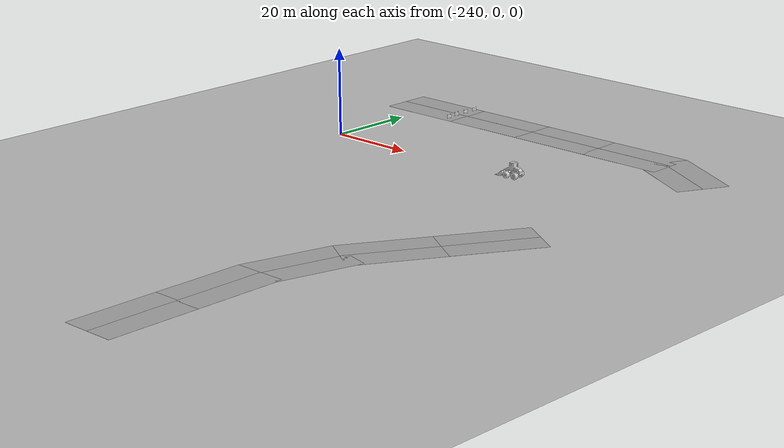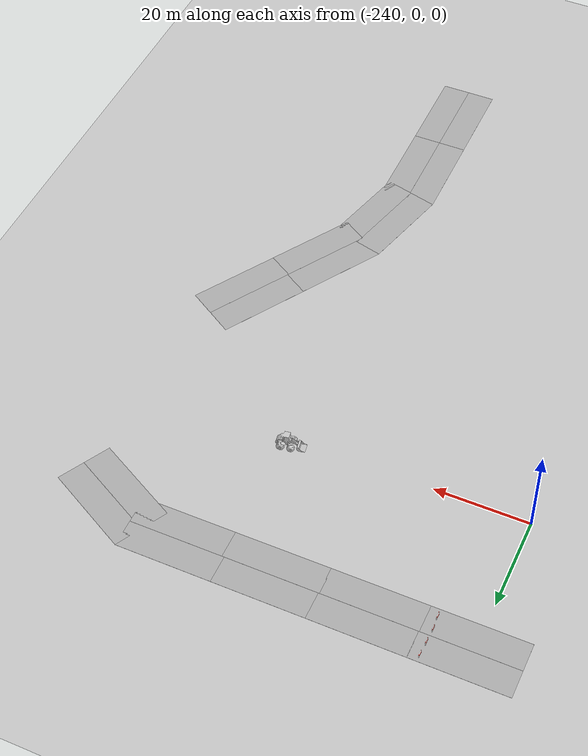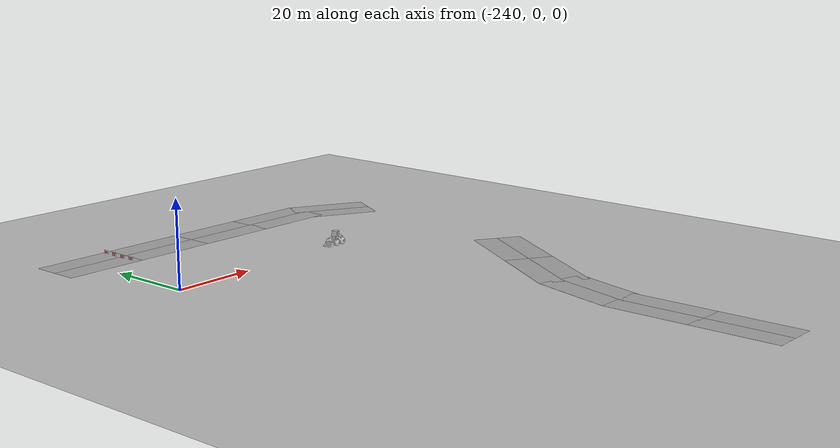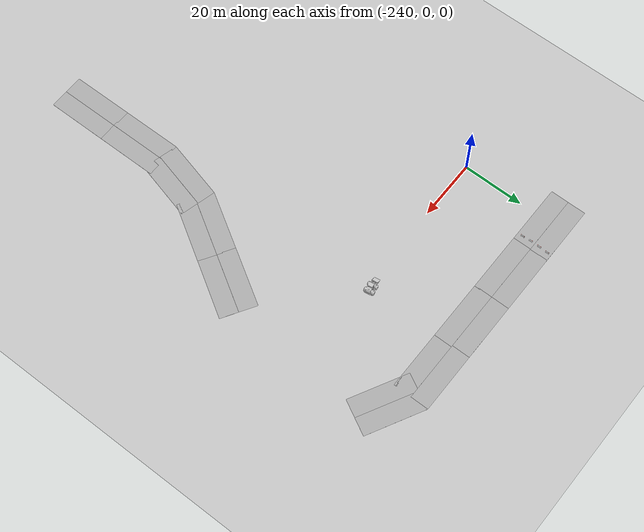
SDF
<sdf version="1.6">
 <world name="default">
  <model name="ground_plane">
   <static>1</static>
   <link name="link">
    <collision name="collision">
     <geometry><plane><normal>0 0 1</normal><size>500 500</size></plane></geometry>
     <surface><friction><ode><mu>100</mu><mu2>50</mu2></ode></friction></surface>
    </collision>
    <visual name="visual">
     <cast_shadows>0</cast_shadows>
     <geometry><plane><normal>0 0 1</normal><size>500 500</size></plane></geometry>
     <material>
      <script><uri>file://media/materials/scripts/gazebo.material</uri><name>Gazebo/Grey</name></script>
     </material>
    </visual>
   </link>
  </model>
  <model name="double_straight_road">
   <model name="straight_road">
    <link name="link">
     <inertial>
      <mass>1</mass>
      <inertia>
       <ixx>0.166667</ixx>
       <ixy>0</ixy>
       <ixz>0</ixz>
       <iyy>0.166667</iyy>
       <iyz>0</iyz>
       <izz>0.166667</izz>
      </inertia>
     </inertial>
     <visual name="visual">
      <geometry><box><size>20 6 0.02</size></box></geometry>
      <material>
       <script>
        <name>simple_road/Diffuse</name>
        <uri>model://double_straight_road/materials/scripts</uri>
        <uri>model://double_straight_road/materials/textures</uri>
       </script>
       <shader type="vertex"><normal_map>__default__</normal_map></shader>
       <ambient>0.3 0.3 0.3 1</ambient>
       <diffuse>0.7 0.7 0.7 1</diffuse>
       <specular>0.01 0.01 0.01 1</specular>
       <emissive>0 0 0 1</emissive>
      </material>
      <pose>0 0 0.01 0 -0 0</pose>
     </visual>
     <collision name="collision">
      <pose>0 0 0.01 0 -0 0</pose>
      <geometry><box><size>20 6 0.02</size></box></geometry>
      <surface>
       <friction>
        <ode><mu>1</mu><mu2>1</mu2><fdir1>0 0 0</fdir1><slip1>0</slip1><slip2>0</slip2></ode>
        <torsional>
         <coefficient>1</coefficient>
         <patch_radius>0</patch_radius>
         <surface_radius>0</surface_radius>
         <use_patch_radius>1</use_patch_radius>
         <ode><slip>0</slip></ode>
        </torsional>
       </friction>
       <bounce><restitution_coefficient>0</restitution_coefficient><threshold>1e+06</threshold></bounce>
       <contact>
        <collide_without_contact>0</collide_without_contact>
        <collide_without_contact_bitmask>1</collide_without_contact_bitmask>
        <collide_bitmask>1</collide_bitmask>
        <ode>
         <soft_cfm>0</soft_cfm>
         <soft_erp>0.2</soft_erp>
         <kp>1e+13</kp>
         <kd>1</kd>
         <max_vel>0.01</max_vel>
         <min_depth>0</min_depth>
        </ode>
        <bullet>
         <split_impulse>1</split_impulse>
         <split_impulse_penetration_threshold>-0.01</split_impulse_penetration_threshold>
         <soft_cfm>0</soft_cfm>
         <soft_erp>0.2</soft_erp>
         <kp>1e+13</kp>
         <kd>1</kd>
        </bullet>
       </contact>
      </surface>
     </collision>
    </link>
    <static>1</static>
    <pose>0 -3.0009 0 0 -0 0</pose>
   </model>
   <model name="straight_road_0">
    <link name="link">
     <inertial>
      <mass>1</mass>
      <inertia>
       <ixx>0.166667</ixx>
       <ixy>0</ixy>
       <ixz>0</ixz>
       <iyy>0.166667</iyy>
       <iyz>0</iyz>
       <izz>0.166667</izz>
      </inertia>
     </inertial>
     <visual name="visual">
      <geometry><box><size>20 6 0.02</size></box></geometry>
      <material>
       <script>
        <name>simple_road/Diffuse</name>
        <uri>model://double_straight_road/materials/scripts</uri>
        <uri>model://double_straight_road/materials/textures</uri>
       </script>
       <shader type="vertex"><normal_map>__default__</normal_map></shader>
       <ambient>0.3 0.3 0.3 1</ambient>
       <diffuse>0.7 0.7 0.7 1</diffuse>
       <specular>0.01 0.01 0.01 1</specular>
       <emissive>0 0 0 1</emissive>
      </material>
      <pose>0 0 0.01 0 -0 0</pose>
     </visual>
     <collision name="collision">
      <pose>0 0 0.01 0 -0 0</pose>
      <geometry><box><size>20 6 0.02</size></box></geometry>
      <surface>
       <friction>
        <ode><mu>1</mu><mu2>1</mu2><fdir1>0 0 0</fdir1><slip1>0</slip1><slip2>0</slip2></ode>
        <torsional>
         <coefficient>1</coefficient>
         <patch_radius>0</patch_radius>
         <surface_radius>0</surface_radius>
         <use_patch_radius>1</use_patch_radius>
         <ode><slip>0</slip></ode>
        </torsional>
       </friction>
       <bounce><restitution_coefficient>0</restitution_coefficient><threshold>1e+06</threshold></bounce>
       <contact>
        <collide_without_contact>0</collide_without_contact>
        <collide_without_contact_bitmask>1</collide_without_contact_bitmask>
        <collide_bitmask>1</collide_bitmask>
        <ode>
         <soft_cfm>0</soft_cfm>
         <soft_erp>0.2</soft_erp>
         <kp>1e+13</kp>
         <kd>1</kd>
         <max_vel>0.01</max_vel>
         <min_depth>0</min_depth>
        </ode>
        <bullet>
         <split_impulse>1</split_impulse>
         <split_impulse_penetration_threshold>-0.01</split_impulse_penetration_threshold>
         <soft_cfm>0</soft_cfm>
         <soft_erp>0.2</soft_erp>
         <kp>1e+13</kp>
         <kd>1</kd>
        </bullet>
       </contact>
      </surface>
     </collision>
    </link>
    <static>1</static>
    <pose>0 3.0009 0 0 -0 0</pose>
   </model>
   <static>1</static>
   <pose>-239.242 31.0572 0 0 -0 0</pose>
  </model>
  <model name="double_raw_road">
   <model name="raw_road">
    <link name="link">
     <inertial>
      <mass>1</mass>
      <inertia>
       <ixx>0.166667</ixx>
       <ixy>0</ixy>
       <ixz>0</ixz>
       <iyy>0.166667</iyy>
       <iyz>0</iyz>
       <izz>0.166667</izz>
      </inertia>
     </inertial>
     <visual name="visual">
      <geometry><box><size>20 6 0.02</size></box></geometry>
      <material>
       <script>
        <name>asphalt/Diffuse</name>
        <uri>model://raw_road/materials/scripts</uri>
        <uri>model://raw_road/materials/textures</uri>
       </script>
       <shader type="vertex"><normal_map>__default__</normal_map></shader>
       <ambient>0.3 0.3 0.3 1</ambient>
       <diffuse>0.7 0.7 0.7 1</diffuse>
       <specular>0.01 0.01 0.01 1</specular>
       <emissive>0 0 0 1</emissive>
      </material>
      <pose>0 0 0.01 0 -0 0</pose>
     </visual>
     <collision name="collision">
      <pose>0 0 0.01 0 -0 0</pose>
      <geometry><box><size>20 6 0.02</size></box></geometry>
      <surface>
       <friction>
        <ode><mu>1</mu><mu2>1</mu2><fdir1>0 0 0</fdir1><slip1>0</slip1><slip2>0</slip2></ode>
        <torsional>
         <coefficient>1</coefficient>
         <patch_radius>0</patch_radius>
         <surface_radius>0</surface_radius>
         <use_patch_radius>1</use_patch_radius>
         <ode><slip>0</slip></ode>
        </torsional>
       </friction>
       <bounce><restitution_coefficient>0</restitution_coefficient><threshold>1e+06</threshold></bounce>
       <contact>
        <collide_without_contact>0</collide_without_contact>
        <collide_without_contact_bitmask>1</collide_without_contact_bitmask>
        <collide_bitmask>1</collide_bitmask>
        <ode>
         <soft_cfm>0</soft_cfm>
         <soft_erp>0.2</soft_erp>
         <kp>1e+13</kp>
         <kd>1</kd>
         <max_vel>0.01</max_vel>
         <min_depth>0</min_depth>
        </ode>
        <bullet>
         <split_impulse>1</split_impulse>
         <split_impulse_penetration_threshold>-0.01</split_impulse_penetration_threshold>
         <soft_cfm>0</soft_cfm>
         <soft_erp>0.2</soft_erp>
         <kp>1e+13</kp>
         <kd>1</kd>
        </bullet>
       </contact>
      </surface>
     </collision>
    </link>
    <static>1</static>
    <pose>0 -3.0009 0 0 -0 0</pose>
   </model>
   <model name="raw_road_0">
    <link name="link">
     <inertial>
      <mass>1</mass>
      <inertia>
       <ixx>0.166667</ixx>
       <ixy>0</ixy>
       <ixz>0</ixz>
       <iyy>0.166667</iyy>
       <iyz>0</iyz>
       <izz>0.166667</izz>
      </inertia>
     </inertial>
     <visual name="visual">
      <geometry><box><size>20 6 0.02</size></box></geometry>
      <material>
       <script>
        <name>asphalt/Diffuse</name>
        <uri>model://raw_road/materials/scripts</uri>
        <uri>model://raw_road/materials/textures</uri>
       </script>
       <shader type="vertex"><normal_map>__default__</normal_map></shader>
       <ambient>0.3 0.3 0.3 1</ambient>
       <diffuse>0.7 0.7 0.7 1</diffuse>
       <specular>0.01 0.01 0.01 1</specular>
       <emissive>0 0 0 1</emissive>
      </material>
      <pose>0 0 0.01 0 -0 0</pose>
     </visual>
     <collision name="collision">
      <pose>0 0 0.01 0 -0 0</pose>
      <geometry><box><size>20 6 0.02</size></box></geometry>
      <surface>
       <friction>
        <ode><mu>1</mu><mu2>1</mu2><fdir1>0 0 0</fdir1><slip1>0</slip1><slip2>0</slip2></ode>
        <torsional>
         <coefficient>1</coefficient>
         <patch_radius>0</patch_radius>
         <surface_radius>0</surface_radius>
         <use_patch_radius>1</use_patch_radius>
         <ode><slip>0</slip></ode>
        </torsional>
       </friction>
       <bounce><restitution_coefficient>0</restitution_coefficient><threshold>1e+06</threshold></bounce>
       <contact>
        <collide_without_contact>0</collide_without_contact>
        <collide_without_contact_bitmask>1</collide_without_contact_bitmask>
        <collide_bitmask>1</collide_bitmask>
        <ode>
         <soft_cfm>0</soft_cfm>
         <soft_erp>0.2</soft_erp>
         <kp>1e+13</kp>
         <kd>1</kd>
         <max_vel>0.01</max_vel>
         <min_depth>0</min_depth>
        </ode>
        <bullet>
         <split_impulse>1</split_impulse>
         <split_impulse_penetration_threshold>-0.01</split_impulse_penetration_threshold>
         <soft_cfm>0</soft_cfm>
         <soft_erp>0.2</soft_erp>
         <kp>1e+13</kp>
         <kd>1</kd>
        </bullet>
       </contact>
      </surface>
     </collision>
    </link>
    <static>1</static>
    <pose>0 3.0009 0 0 -0 0</pose>
   </model>
   <static>1</static>
   <pose>-219.354 31.0572 0 0 -0 0</pose>
  </model>
  <model name="roadbarrier">
   <static>1</static>
   <link name="link">
    <collision name="collision">
     <geometry><mesh><scale>1 1 1</scale><uri>model://roadbarrier/meshes/roadbarrier.dae</uri></mesh></geometry>
    </collision>
    <visual name="visual">
     <geometry><mesh><scale>1 1 1</scale><uri>model://roadbarrier/meshes/roadbarrier.dae</uri></mesh></geometry>
    </visual>
   </link>
   <pose>-231.26 35.6483 -0.020038 0 0 -1.5715</pose>
  </model>
  <model name="roadbarrier_clone">
   <static>1</static>
   <link name="link">
    <collision name="collision">
     <geometry><mesh><scale>1 1 1</scale><uri>model://roadbarrier/meshes/roadbarrier.dae</uri></mesh></geometry>
    </collision>
    <visual name="visual">
     <geometry><mesh><scale>1 1 1</scale><uri>model://roadbarrier/meshes/roadbarrier.dae</uri></mesh></geometry>
    </visual>
   </link>
   <pose>-231.391 32.6954 -0.020038 0 0 -1.5715</pose>
  </model>
  <model name="roadbarrier_clone_0">
   <static>1</static>
   <link name="link">
    <collision name="collision">
     <geometry><mesh><scale>1 1 1</scale><uri>model://roadbarrier/meshes/roadbarrier.dae</uri></mesh></geometry>
    </collision>
    <visual name="visual">
     <geometry><mesh><scale>1 1 1</scale><uri>model://roadbarrier/meshes/roadbarrier.dae</uri></mesh></geometry>
    </visual>
   </link>
   <pose>-231.469 29.6372 -0.020038 0 0 -1.5715</pose>
  </model>
  <model name="roadbarrier_clone_1">
   <static>1</static>
   <link name="link">
    <collision name="collision">
     <geometry><mesh><scale>1 1 1</scale><uri>model://roadbarrier/meshes/roadbarrier.dae</uri></mesh></geometry>
    </collision>
    <visual name="visual">
     <geometry><mesh><scale>1 1 1</scale><uri>model://roadbarrier/meshes/roadbarrier.dae</uri></mesh></geometry>
    </visual>
   </link>
   <pose>-231.288 26.8494 -0.020038 0 0 -1.5715</pose>
  </model>
  <model name="double_raw_road_0">
   <model name="raw_road">
    <link name="link">
     <inertial>
      <mass>1</mass>
      <inertia>
       <ixx>0.166667</ixx>
       <ixy>0</ixy>
       <ixz>0</ixz>
       <iyy>0.166667</iyy>
       <iyz>0</iyz>
       <izz>0.166667</izz>
      </inertia>
     </inertial>
     <visual name="visual">
      <geometry><box><size>20 6 0.02</size></box></geometry>
      <material>
       <script>
        <name>asphalt/Diffuse</name>
        <uri>model://raw_road/materials/scripts</uri>
        <uri>model://raw_road/materials/textures</uri>
       </script>
       <shader type="vertex"><normal_map>__default__</normal_map></shader>
       <ambient>0.3 0.3 0.3 1</ambient>
       <diffuse>0.7 0.7 0.7 1</diffuse>
       <specular>0.01 0.01 0.01 1</specular>
       <emissive>0 0 0 1</emissive>
      </material>
      <pose>0 0 0.01 0 -0 0</pose>
     </visual>
     <collision name="collision">
      <pose>0 0 0.01 0 -0 0</pose>
      <geometry><box><size>20 6 0.02</size></box></geometry>
      <surface>
       <friction>
        <ode><mu>1</mu><mu2>1</mu2><fdir1>0 0 0</fdir1><slip1>0</slip1><slip2>0</slip2></ode>
        <torsional>
         <coefficient>1</coefficient>
         <patch_radius>0</patch_radius>
         <surface_radius>0</surface_radius>
         <use_patch_radius>1</use_patch_radius>
         <ode><slip>0</slip></ode>
        </torsional>
       </friction>
       <bounce><restitution_coefficient>0</restitution_coefficient><threshold>1e+06</threshold></bounce>
       <contact>
        <collide_without_contact>0</collide_without_contact>
        <collide_without_contact_bitmask>1</collide_without_contact_bitmask>
        <collide_bitmask>1</collide_bitmask>
        <ode>
         <soft_cfm>0</soft_cfm>
         <soft_erp>0.2</soft_erp>
         <kp>1e+13</kp>
         <kd>1</kd>
         <max_vel>0.01</max_vel>
         <min_depth>0</min_depth>
        </ode>
        <bullet>
         <split_impulse>1</split_impulse>
         <split_impulse_penetration_threshold>-0.01</split_impulse_penetration_threshold>
         <soft_cfm>0</soft_cfm>
         <soft_erp>0.2</soft_erp>
         <kp>1e+13</kp>
         <kd>1</kd>
        </bullet>
       </contact>
      </surface>
     </collision>
    </link>
    <static>1</static>
    <pose>0 -3.0009 0 0 -0 0</pose>
   </model>
   <model name="raw_road_0">
    <link name="link">
     <inertial>
      <mass>1</mass>
      <inertia>
       <ixx>0.166667</ixx>
       <ixy>0</ixy>
       <ixz>0</ixz>
       <iyy>0.166667</iyy>
       <iyz>0</iyz>
       <izz>0.166667</izz>
      </inertia>
     </inertial>
     <visual name="visual">
      <geometry><box><size>20 6 0.02</size></box></geometry>
      <material>
       <script>
        <name>asphalt/Diffuse</name>
        <uri>model://raw_road/materials/scripts</uri>
        <uri>model://raw_road/materials/textures</uri>
       </script>
       <shader type="vertex"><normal_map>__default__</normal_map></shader>
       <ambient>0.3 0.3 0.3 1</ambient>
       <diffuse>0.7 0.7 0.7 1</diffuse>
       <specular>0.01 0.01 0.01 1</specular>
       <emissive>0 0 0 1</emissive>
      </material>
      <pose>0 0 0.01 0 -0 0</pose>
     </visual>
     <collision name="collision">
      <pose>0 0 0.01 0 -0 0</pose>
      <geometry><box><size>20 6 0.02</size></box></geometry>
      <surface>
       <friction>
        <ode><mu>1</mu><mu2>1</mu2><fdir1>0 0 0</fdir1><slip1>0</slip1><slip2>0</slip2></ode>
        <torsional>
         <coefficient>1</coefficient>
         <patch_radius>0</patch_radius>
         <surface_radius>0</surface_radius>
         <use_patch_radius>1</use_patch_radius>
         <ode><slip>0</slip></ode>
        </torsional>
       </friction>
       <bounce><restitution_coefficient>0</restitution_coefficient><threshold>1e+06</threshold></bounce>
       <contact>
        <collide_without_contact>0</collide_without_contact>
        <collide_without_contact_bitmask>1</collide_without_contact_bitmask>
        <collide_bitmask>1</collide_bitmask>
        <ode>
         <soft_cfm>0</soft_cfm>
         <soft_erp>0.2</soft_erp>
         <kp>1e+13</kp>
         <kd>1</kd>
         <max_vel>0.01</max_vel>
         <min_depth>0</min_depth>
        </ode>
        <bullet>
         <split_impulse>1</split_impulse>
         <split_impulse_penetration_threshold>-0.01</split_impulse_penetration_threshold>
         <soft_cfm>0</soft_cfm>
         <soft_erp>0.2</soft_erp>
         <kp>1e+13</kp>
         <kd>1</kd>
        </bullet>
       </contact>
      </surface>
     </collision>
    </link>
    <static>1</static>
    <pose>0 3.0009 0 0 -0 0</pose>
   </model>
   <static>1</static>
   <pose>-199.558 31.0572 0 0 -0 0</pose>
  </model>
  <model name="double_raw_road_1">
   <model name="raw_road">
    <link name="link">
     <inertial>
      <mass>1</mass>
      <inertia>
       <ixx>0.166667</ixx>
       <ixy>0</ixy>
       <ixz>0</ixz>
       <iyy>0.166667</iyy>
       <iyz>0</iyz>
       <izz>0.166667</izz>
      </inertia>
     </inertial>
     <visual name="visual">
      <geometry><box><size>20 6 0.02</size></box></geometry>
      <material>
       <script>
        <name>asphalt/Diffuse</name>
        <uri>model://raw_road/materials/scripts</uri>
        <uri>model://raw_road/materials/textures</uri>
       </script>
       <shader type="vertex"><normal_map>__default__</normal_map></shader>
       <ambient>0.3 0.3 0.3 1</ambient>
       <diffuse>0.7 0.7 0.7 1</diffuse>
       <specular>0.01 0.01 0.01 1</specular>
       <emissive>0 0 0 1</emissive>
      </material>
      <pose>0 0 0.01 0 -0 0</pose>
     </visual>
     <collision name="collision">
      <pose>0 0 0.01 0 -0 0</pose>
      <geometry><box><size>20 6 0.02</size></box></geometry>
      <surface>
       <friction>
        <ode><mu>1</mu><mu2>1</mu2><fdir1>0 0 0</fdir1><slip1>0</slip1><slip2>0</slip2></ode>
        <torsional>
         <coefficient>1</coefficient>
         <patch_radius>0</patch_radius>
         <surface_radius>0</surface_radius>
         <use_patch_radius>1</use_patch_radius>
         <ode><slip>0</slip></ode>
        </torsional>
       </friction>
       <bounce><restitution_coefficient>0</restitution_coefficient><threshold>1e+06</threshold></bounce>
       <contact>
        <collide_without_contact>0</collide_without_contact>
        <collide_without_contact_bitmask>1</collide_without_contact_bitmask>
        <collide_bitmask>1</collide_bitmask>
        <ode>
         <soft_cfm>0</soft_cfm>
         <soft_erp>0.2</soft_erp>
         <kp>1e+13</kp>
         <kd>1</kd>
         <max_vel>0.01</max_vel>
         <min_depth>0</min_depth>
        </ode>
        <bullet>
         <split_impulse>1</split_impulse>
         <split_impulse_penetration_threshold>-0.01</split_impulse_penetration_threshold>
         <soft_cfm>0</soft_cfm>
         <soft_erp>0.2</soft_erp>
         <kp>1e+13</kp>
         <kd>1</kd>
        </bullet>
       </contact>
      </surface>
     </collision>
    </link>
    <static>1</static>
    <pose>0 -3.0009 0 0 -0 0</pose>
   </model>
   <model name="raw_road_0">
    <link name="link">
     <inertial>
      <mass>1</mass>
      <inertia>
       <ixx>0.166667</ixx>
       <ixy>0</ixy>
       <ixz>0</ixz>
       <iyy>0.166667</iyy>
       <iyz>0</iyz>
       <izz>0.166667</izz>
      </inertia>
     </inertial>
     <visual name="visual">
      <geometry><box><size>20 6 0.02</size></box></geometry>
      <material>
       <script>
        <name>asphalt/Diffuse</name>
        <uri>model://raw_road/materials/scripts</uri>
        <uri>model://raw_road/materials/textures</uri>
       </script>
       <shader type="vertex"><normal_map>__default__</normal_map></shader>
       <ambient>0.3 0.3 0.3 1</ambient>
       <diffuse>0.7 0.7 0.7 1</diffuse>
       <specular>0.01 0.01 0.01 1</specular>
       <emissive>0 0 0 1</emissive>
      </material>
      <pose>0 0 0.01 0 -0 0</pose>
     </visual>
     <collision name="collision">
      <pose>0 0 0.01 0 -0 0</pose>
      <geometry><box><size>20 6 0.02</size></box></geometry>
      <surface>
       <friction>
        <ode><mu>1</mu><mu2>1</mu2><fdir1>0 0 0</fdir1><slip1>0</slip1><slip2>0</slip2></ode>
        <torsional>
         <coefficient>1</coefficient>
         <patch_radius>0</patch_radius>
         <surface_radius>0</surface_radius>
         <use_patch_radius>1</use_patch_radius>
         <ode><slip>0</slip></ode>
        </torsional>
       </friction>
       <bounce><restitution_coefficient>0</restitution_coefficient><threshold>1e+06</threshold></bounce>
       <contact>
        <collide_without_contact>0</collide_without_contact>
        <collide_without_contact_bitmask>1</collide_without_contact_bitmask>
        <collide_bitmask>1</collide_bitmask>
        <ode>
         <soft_cfm>0</soft_cfm>
         <soft_erp>0.2</soft_erp>
         <kp>1e+13</kp>
         <kd>1</kd>
         <max_vel>0.01</max_vel>
         <min_depth>0</min_depth>
        </ode>
        <bullet>
         <split_impulse>1</split_impulse>
         <split_impulse_penetration_threshold>-0.01</split_impulse_penetration_threshold>
         <soft_cfm>0</soft_cfm>
         <soft_erp>0.2</soft_erp>
         <kp>1e+13</kp>
         <kd>1</kd>
        </bullet>
       </contact>
      </surface>
     </collision>
    </link>
    <static>1</static>
    <pose>0 3.0009 0 0 -0 0</pose>
   </model>
   <static>1</static>
   <pose>-180.065 31.0572 0 0 -0 0</pose>
  </model>
  <model name="double_raw_road_2">
   <model name="raw_road">
    <link name="link">
     <inertial>
      <mass>1</mass>
      <inertia>
       <ixx>0.166667</ixx>
       <ixy>0</ixy>
       <ixz>0</ixz>
       <iyy>0.166667</iyy>
       <iyz>0</iyz>
       <izz>0.166667</izz>
      </inertia>
     </inertial>
     <visual name="visual">
      <geometry><box><size>20 6 0.02</size></box></geometry>
      <material>
       <script>
        <name>asphalt/Diffuse</name>
        <uri>model://raw_road/materials/scripts</uri>
        <uri>model://raw_road/materials/textures</uri>
       </script>
       <shader type="vertex"><normal_map>__default__</normal_map></shader>
       <ambient>0.3 0.3 0.3 1</ambient>
       <diffuse>0.7 0.7 0.7 1</diffuse>
       <specular>0.01 0.01 0.01 1</specular>
       <emissive>0 0 0 1</emissive>
      </material>
      <pose>0 0 0.01 0 -0 0</pose>
     </visual>
     <collision name="collision">
      <pose>0 0 0.01 0 -0 0</pose>
      <geometry><box><size>20 6 0.02</size></box></geometry>
      <surface>
       <friction>
        <ode><mu>1</mu><mu2>1</mu2><fdir1>0 0 0</fdir1><slip1>0</slip1><slip2>0</slip2></ode>
        <torsional>
         <coefficient>1</coefficient>
         <patch_radius>0</patch_radius>
         <surface_radius>0</surface_radius>
         <use_patch_radius>1</use_patch_radius>
         <ode><slip>0</slip></ode>
        </torsional>
       </friction>
       <bounce><restitution_coefficient>0</restitution_coefficient><threshold>1e+06</threshold></bounce>
       <contact>
        <collide_without_contact>0</collide_without_contact>
        <collide_without_contact_bitmask>1</collide_without_contact_bitmask>
        <collide_bitmask>1</collide_bitmask>
        <ode>
         <soft_cfm>0</soft_cfm>
         <soft_erp>0.2</soft_erp>
         <kp>1e+13</kp>
         <kd>1</kd>
         <max_vel>0.01</max_vel>
         <min_depth>0</min_depth>
        </ode>
        <bullet>
         <split_impulse>1</split_impulse>
         <split_impulse_penetration_threshold>-0.01</split_impulse_penetration_threshold>
         <soft_cfm>0</soft_cfm>
         <soft_erp>0.2</soft_erp>
         <kp>1e+13</kp>
         <kd>1</kd>
        </bullet>
       </contact>
      </surface>
     </collision>
    </link>
    <static>1</static>
    <pose>0 -3.0009 0 0 -0 0</pose>
   </model>
   <model name="raw_road_0">
    <link name="link">
     <inertial>
      <mass>1</mass>
      <inertia>
       <ixx>0.166667</ixx>
       <ixy>0</ixy>
       <ixz>0</ixz>
       <iyy>0.166667</iyy>
       <iyz>0</iyz>
       <izz>0.166667</izz>
      </inertia>
     </inertial>
     <visual name="visual">
      <geometry><box><size>20 6 0.02</size></box></geometry>
      <material>
       <script>
        <name>asphalt/Diffuse</name>
        <uri>model://raw_road/materials/scripts</uri>
        <uri>model://raw_road/materials/textures</uri>
       </script>
       <shader type="vertex"><normal_map>__default__</normal_map></shader>
       <ambient>0.3 0.3 0.3 1</ambient>
       <diffuse>0.7 0.7 0.7 1</diffuse>
       <specular>0.01 0.01 0.01 1</specular>
       <emissive>0 0 0 1</emissive>
      </material>
      <pose>0 0 0.01 0 -0 0</pose>
     </visual>
     <collision name="collision">
      <pose>0 0 0.01 0 -0 0</pose>
      <geometry><box><size>20 6 0.02</size></box></geometry>
      <surface>
       <friction>
        <ode><mu>1</mu><mu2>1</mu2><fdir1>0 0 0</fdir1><slip1>0</slip1><slip2>0</slip2></ode>
        <torsional>
         <coefficient>1</coefficient>
         <patch_radius>0</patch_radius>
         <surface_radius>0</surface_radius>
         <use_patch_radius>1</use_patch_radius>
         <ode><slip>0</slip></ode>
        </torsional>
       </friction>
       <bounce><restitution_coefficient>0</restitution_coefficient><threshold>1e+06</threshold></bounce>
       <contact>
        <collide_without_contact>0</collide_without_contact>
        <collide_without_contact_bitmask>1</collide_without_contact_bitmask>
        <collide_bitmask>1</collide_bitmask>
        <ode>
         <soft_cfm>0</soft_cfm>
         <soft_erp>0.2</soft_erp>
         <kp>1e+13</kp>
         <kd>1</kd>
         <max_vel>0.01</max_vel>
         <min_depth>0</min_depth>
        </ode>
        <bullet>
         <split_impulse>1</split_impulse>
         <split_impulse_penetration_threshold>-0.01</split_impulse_penetration_threshold>
         <soft_cfm>0</soft_cfm>
         <soft_erp>0.2</soft_erp>
         <kp>1e+13</kp>
         <kd>1</kd>
        </bullet>
       </contact>
      </surface>
     </collision>
    </link>
    <static>1</static>
    <pose>0 3.0009 0 0 -0 0</pose>
   </model>
   <static>1</static>
   <pose>-164.074 27.0506 0 0 0 -0.490421</pose>
  </model>
  <model name="double_raw_road_2_clone_clone_clone_clone">
   <model name="raw_road">
    <link name="link">
     <inertial>
      <mass>1</mass>
      <inertia>
       <ixx>0.166667</ixx>
       <ixy>0</ixy>
       <ixz>0</ixz>
       <iyy>0.166667</iyy>
       <iyz>0</iyz>
       <izz>0.166667</izz>
      </inertia>
     </inertial>
     <visual name="visual">
      <geometry><box><size>20 6 0.02</size></box></geometry>
      <material>
       <script>
        <name>asphalt/Diffuse</name>
        <uri>model://raw_road/materials/scripts</uri>
        <uri>model://raw_road/materials/textures</uri>
       </script>
       <shader type="vertex"><normal_map>__default__</normal_map></shader>
       <ambient>0.3 0.3 0.3 1</ambient>
       <diffuse>0.7 0.7 0.7 1</diffuse>
       <specular>0.01 0.01 0.01 1</specular>
       <emissive>0 0 0 1</emissive>
      </material>
      <pose>0 0 0.01 0 -0 0</pose>
     </visual>
     <collision name="collision">
      <pose>0 0 0.01 0 -0 0</pose>
      <geometry><box><size>20 6 0.02</size></box></geometry>
      <surface>
       <friction>
        <ode><mu>1</mu><mu2>1</mu2><fdir1>0 0 0</fdir1><slip1>0</slip1><slip2>0</slip2></ode>
        <torsional>
         <coefficient>1</coefficient>
         <patch_radius>0</patch_radius>
         <surface_radius>0</surface_radius>
         <use_patch_radius>1</use_patch_radius>
         <ode><slip>0</slip></ode>
        </torsional>
       </friction>
       <bounce><restitution_coefficient>0</restitution_coefficient><threshold>1e+06</threshold></bounce>
       <contact>
        <collide_without_contact>0</collide_without_contact>
        <collide_without_contact_bitmask>1</collide_without_contact_bitmask>
        <collide_bitmask>1</collide_bitmask>
        <ode>
         <soft_cfm>0</soft_cfm>
         <soft_erp>0.2</soft_erp>
         <kp>1e+13</kp>
         <kd>1</kd>
         <max_vel>0.01</max_vel>
         <min_depth>0</min_depth>
        </ode>
        <bullet>
         <split_impulse>1</split_impulse>
         <split_impulse_penetration_threshold>-0.01</split_impulse_penetration_threshold>
         <soft_cfm>0</soft_cfm>
         <soft_erp>0.2</soft_erp>
         <kp>1e+13</kp>
         <kd>1</kd>
        </bullet>
       </contact>
      </surface>
     </collision>
    </link>
    <static>1</static>
    <pose>0 -3.0009 0 0 -0 0</pose>
   </model>
   <model name="raw_road_0">
    <link name="link">
     <inertial>
      <mass>1</mass>
      <inertia>
       <ixx>0.166667</ixx>
       <ixy>0</ixy>
       <ixz>0</ixz>
       <iyy>0.166667</iyy>
       <iyz>0</iyz>
       <izz>0.166667</izz>
      </inertia>
     </inertial>
     <visual name="visual">
      <geometry><box><size>20 6 0.02</size></box></geometry>
      <material>
       <script>
        <name>asphalt/Diffuse</name>
        <uri>model://raw_road/materials/scripts</uri>
        <uri>model://raw_road/materials/textures</uri>
       </script>
       <shader type="vertex"><normal_map>__default__</normal_map></shader>
       <ambient>0.3 0.3 0.3 1</ambient>
       <diffuse>0.7 0.7 0.7 1</diffuse>
       <specular>0.01 0.01 0.01 1</specular>
       <emissive>0 0 0 1</emissive>
      </material>
      <pose>0 0 0.01 0 -0 0</pose>
     </visual>
     <collision name="collision">
      <pose>0 0 0.01 0 -0 0</pose>
      <geometry><box><size>20 6 0.02</size></box></geometry>
      <surface>
       <friction>
        <ode><mu>1</mu><mu2>1</mu2><fdir1>0 0 0</fdir1><slip1>0</slip1><slip2>0</slip2></ode>
        <torsional>
         <coefficient>1</coefficient>
         <patch_radius>0</patch_radius>
         <surface_radius>0</surface_radius>
         <use_patch_radius>1</use_patch_radius>
         <ode><slip>0</slip></ode>
        </torsional>
       </friction>
       <bounce><restitution_coefficient>0</restitution_coefficient><threshold>1e+06</threshold></bounce>
       <contact>
        <collide_without_contact>0</collide_without_contact>
        <collide_without_contact_bitmask>1</collide_without_contact_bitmask>
        <collide_bitmask>1</collide_bitmask>
        <ode>
         <soft_cfm>0</soft_cfm>
         <soft_erp>0.2</soft_erp>
         <kp>1e+13</kp>
         <kd>1</kd>
         <max_vel>0.01</max_vel>
         <min_depth>0</min_depth>
        </ode>
        <bullet>
         <split_impulse>1</split_impulse>
         <split_impulse_penetration_threshold>-0.01</split_impulse_penetration_threshold>
         <soft_cfm>0</soft_cfm>
         <soft_erp>0.2</soft_erp>
         <kp>1e+13</kp>
         <kd>1</kd>
        </bullet>
       </contact>
      </surface>
     </collision>
    </link>
    <static>1</static>
    <pose>0 3.0009 0 0 -0 0</pose>
   </model>
   <static>1</static>
   <pose>-165.378 -32.4101 0 0 0 -2.12011</pose>
  </model>
  <model name="double_raw_road_2_clone_clone_clone_clone_0">
   <model name="raw_road">
    <link name="link">
     <inertial>
      <mass>1</mass>
      <inertia>
       <ixx>0.166667</ixx>
       <ixy>0</ixy>
       <ixz>0</ixz>
       <iyy>0.166667</iyy>
       <iyz>0</iyz>
       <izz>0.166667</izz>
      </inertia>
     </inertial>
     <visual name="visual">
      <geometry><box><size>20 6 0.02</size></box></geometry>
      <material>
       <script>
        <name>asphalt/Diffuse</name>
        <uri>model://raw_road/materials/scripts</uri>
        <uri>model://raw_road/materials/textures</uri>
       </script>
       <shader type="vertex"><normal_map>__default__</normal_map></shader>
       <ambient>0.3 0.3 0.3 1</ambient>
       <diffuse>0.7 0.7 0.7 1</diffuse>
       <specular>0.01 0.01 0.01 1</specular>
       <emissive>0 0 0 1</emissive>
      </material>
      <pose>0 0 0.01 0 -0 0</pose>
     </visual>
     <collision name="collision">
      <pose>0 0 0.01 0 -0 0</pose>
      <geometry><box><size>20 6 0.02</size></box></geometry>
      <surface>
       <friction>
        <ode><mu>1</mu><mu2>1</mu2><fdir1>0 0 0</fdir1><slip1>0</slip1><slip2>0</slip2></ode>
        <torsional>
         <coefficient>1</coefficient>
         <patch_radius>0</patch_radius>
         <surface_radius>0</surface_radius>
         <use_patch_radius>1</use_patch_radius>
         <ode><slip>0</slip></ode>
        </torsional>
       </friction>
       <bounce><restitution_coefficient>0</restitution_coefficient><threshold>1e+06</threshold></bounce>
       <contact>
        <collide_without_contact>0</collide_without_contact>
        <collide_without_contact_bitmask>1</collide_without_contact_bitmask>
        <collide_bitmask>1</collide_bitmask>
        <ode>
         <soft_cfm>0</soft_cfm>
         <soft_erp>0.2</soft_erp>
         <kp>1e+13</kp>
         <kd>1</kd>
         <max_vel>0.01</max_vel>
         <min_depth>0</min_depth>
        </ode>
        <bullet>
         <split_impulse>1</split_impulse>
         <split_impulse_penetration_threshold>-0.01</split_impulse_penetration_threshold>
         <soft_cfm>0</soft_cfm>
         <soft_erp>0.2</soft_erp>
         <kp>1e+13</kp>
         <kd>1</kd>
        </bullet>
       </contact>
      </surface>
     </collision>
    </link>
    <static>1</static>
    <pose>0 -3.0009 0 0 -0 0</pose>
   </model>
   <model name="raw_road_0">
    <link name="link">
     <inertial>
      <mass>1</mass>
      <inertia>
       <ixx>0.166667</ixx>
       <ixy>0</ixy>
       <ixz>0</ixz>
       <iyy>0.166667</iyy>
       <iyz>0</iyz>
       <izz>0.166667</izz>
      </inertia>
     </inertial>
     <visual name="visual">
      <geometry><box><size>20 6 0.02</size></box></geometry>
      <material>
       <script>
        <name>asphalt/Diffuse</name>
        <uri>model://raw_road/materials/scripts</uri>
        <uri>model://raw_road/materials/textures</uri>
       </script>
       <shader type="vertex"><normal_map>__default__</normal_map></shader>
       <ambient>0.3 0.3 0.3 1</ambient>
       <diffuse>0.7 0.7 0.7 1</diffuse>
       <specular>0.01 0.01 0.01 1</specular>
       <emissive>0 0 0 1</emissive>
      </material>
      <pose>0 0 0.01 0 -0 0</pose>
     </visual>
     <collision name="collision">
      <pose>0 0 0.01 0 -0 0</pose>
      <geometry><box><size>20 6 0.02</size></box></geometry>
      <surface>
       <friction>
        <ode><mu>1</mu><mu2>1</mu2><fdir1>0 0 0</fdir1><slip1>0</slip1><slip2>0</slip2></ode>
        <torsional>
         <coefficient>1</coefficient>
         <patch_radius>0</patch_radius>
         <surface_radius>0</surface_radius>
         <use_patch_radius>1</use_patch_radius>
         <ode><slip>0</slip></ode>
        </torsional>
       </friction>
       <bounce><restitution_coefficient>0</restitution_coefficient><threshold>1e+06</threshold></bounce>
       <contact>
        <collide_without_contact>0</collide_without_contact>
        <collide_without_contact_bitmask>1</collide_without_contact_bitmask>
        <collide_bitmask>1</collide_bitmask>
        <ode>
         <soft_cfm>0</soft_cfm>
         <soft_erp>0.2</soft_erp>
         <kp>1e+13</kp>
         <kd>1</kd>
         <max_vel>0.01</max_vel>
         <min_depth>0</min_depth>
        </ode>
        <bullet>
         <split_impulse>1</split_impulse>
         <split_impulse_penetration_threshold>-0.01</split_impulse_penetration_threshold>
         <soft_cfm>0</soft_cfm>
         <soft_erp>0.2</soft_erp>
         <kp>1e+13</kp>
         <kd>1</kd>
        </bullet>
       </contact>
      </surface>
     </collision>
    </link>
    <static>1</static>
    <pose>0 3.0009 0 0 -0 0</pose>
   </model>
   <static>1</static>
   <pose>-175.687 -49.2809 0 0 0 -2.12011</pose>
  </model>
  <model name="double_raw_road_2_clone_clone_clone_clone_1">
   <model name="raw_road">
    <link name="link">
     <inertial>
      <mass>1</mass>
      <inertia>
       <ixx>0.166667</ixx>
       <ixy>0</ixy>
       <ixz>0</ixz>
       <iyy>0.166667</iyy>
       <iyz>0</iyz>
       <izz>0.166667</izz>
      </inertia>
     </inertial>
     <visual name="visual">
      <geometry><box><size>20 6 0.02</size></box></geometry>
      <material>
       <script>
        <name>asphalt/Diffuse</name>
        <uri>model://raw_road/materials/scripts</uri>
        <uri>model://raw_road/materials/textures</uri>
       </script>
       <shader type="vertex"><normal_map>__default__</normal_map></shader>
       <ambient>0.3 0.3 0.3 1</ambient>
       <diffuse>0.7 0.7 0.7 1</diffuse>
       <specular>0.01 0.01 0.01 1</specular>
       <emissive>0 0 0 1</emissive>
      </material>
      <pose>0 0 0.01 0 -0 0</pose>
     </visual>
     <collision name="collision">
      <pose>0 0 0.01 0 -0 0</pose>
      <geometry><box><size>20 6 0.02</size></box></geometry>
      <surface>
       <friction>
        <ode><mu>1</mu><mu2>1</mu2><fdir1>0 0 0</fdir1><slip1>0</slip1><slip2>0</slip2></ode>
        <torsional>
         <coefficient>1</coefficient>
         <patch_radius>0</patch_radius>
         <surface_radius>0</surface_radius>
         <use_patch_radius>1</use_patch_radius>
         <ode><slip>0</slip></ode>
        </torsional>
       </friction>
       <bounce><restitution_coefficient>0</restitution_coefficient><threshold>1e+06</threshold></bounce>
       <contact>
        <collide_without_contact>0</collide_without_contact>
        <collide_without_contact_bitmask>1</collide_without_contact_bitmask>
        <collide_bitmask>1</collide_bitmask>
        <ode>
         <soft_cfm>0</soft_cfm>
         <soft_erp>0.2</soft_erp>
         <kp>1e+13</kp>
         <kd>1</kd>
         <max_vel>0.01</max_vel>
         <min_depth>0</min_depth>
        </ode>
        <bullet>
         <split_impulse>1</split_impulse>
         <split_impulse_penetration_threshold>-0.01</split_impulse_penetration_threshold>
         <soft_cfm>0</soft_cfm>
         <soft_erp>0.2</soft_erp>
         <kp>1e+13</kp>
         <kd>1</kd>
        </bullet>
       </contact>
      </surface>
     </collision>
    </link>
    <static>1</static>
    <pose>0 -3.0009 0 0 -0 0</pose>
   </model>
   <model name="raw_road_0">
    <link name="link">
     <inertial>
      <mass>1</mass>
      <inertia>
       <ixx>0.166667</ixx>
       <ixy>0</ixy>
       <ixz>0</ixz>
       <iyy>0.166667</iyy>
       <iyz>0</iyz>
       <izz>0.166667</izz>
      </inertia>
     </inertial>
     <visual name="visual">
      <geometry><box><size>20 6 0.02</size></box></geometry>
      <material>
       <script>
        <name>asphalt/Diffuse</name>
        <uri>model://raw_road/materials/scripts</uri>
        <uri>model://raw_road/materials/textures</uri>
       </script>
       <shader type="vertex"><normal_map>__default__</normal_map></shader>
       <ambient>0.3 0.3 0.3 1</ambient>
       <diffuse>0.7 0.7 0.7 1</diffuse>
       <specular>0.01 0.01 0.01 1</specular>
       <emissive>0 0 0 1</emissive>
      </material>
      <pose>0 0 0.01 0 -0 0</pose>
     </visual>
     <collision name="collision">
      <pose>0 0 0.01 0 -0 0</pose>
      <geometry><box><size>20 6 0.02</size></box></geometry>
      <surface>
       <friction>
        <ode><mu>1</mu><mu2>1</mu2><fdir1>0 0 0</fdir1><slip1>0</slip1><slip2>0</slip2></ode>
        <torsional>
         <coefficient>1</coefficient>
         <patch_radius>0</patch_radius>
         <surface_radius>0</surface_radius>
         <use_patch_radius>1</use_patch_radius>
         <ode><slip>0</slip></ode>
        </torsional>
       </friction>
       <bounce><restitution_coefficient>0</restitution_coefficient><threshold>1e+06</threshold></bounce>
       <contact>
        <collide_without_contact>0</collide_without_contact>
        <collide_without_contact_bitmask>1</collide_without_contact_bitmask>
        <collide_bitmask>1</collide_bitmask>
        <ode>
         <soft_cfm>0</soft_cfm>
         <soft_erp>0.2</soft_erp>
         <kp>1e+13</kp>
         <kd>1</kd>
         <max_vel>0.01</max_vel>
         <min_depth>0</min_depth>
        </ode>
        <bullet>
         <split_impulse>1</split_impulse>
         <split_impulse_penetration_threshold>-0.01</split_impulse_penetration_threshold>
         <soft_cfm>0</soft_cfm>
         <soft_erp>0.2</soft_erp>
         <kp>1e+13</kp>
         <kd>1</kd>
        </bullet>
       </contact>
      </surface>
     </collision>
    </link>
    <static>1</static>
    <pose>0 3.0009 0 0 -0 0</pose>
   </model>
   <static>1</static>
   <pose>-185.001 -83.9949 0 0 0 -1.56713</pose>
  </model>
  <model name="double_raw_road_2_clone_clone_clone_clone_1_clone">
   <model name="raw_road">
    <link name="link">
     <inertial>
      <mass>1</mass>
      <inertia>
       <ixx>0.166667</ixx>
       <ixy>0</ixy>
       <ixz>0</ixz>
       <iyy>0.166667</iyy>
       <iyz>0</iyz>
       <izz>0.166667</izz>
      </inertia>
     </inertial>
     <visual name="visual">
      <geometry><box><size>20 6 0.02</size></box></geometry>
      <material>
       <script>
        <name>asphalt/Diffuse</name>
        <uri>model://raw_road/materials/scripts</uri>
        <uri>model://raw_road/materials/textures</uri>
       </script>
       <shader type="vertex"><normal_map>__default__</normal_map></shader>
       <ambient>0.3 0.3 0.3 1</ambient>
       <diffuse>0.7 0.7 0.7 1</diffuse>
       <specular>0.01 0.01 0.01 1</specular>
       <emissive>0 0 0 1</emissive>
      </material>
      <pose>0 0 0.01 0 -0 0</pose>
     </visual>
     <collision name="collision">
      <pose>0 0 0.01 0 -0 0</pose>
      <geometry><box><size>20 6 0.02</size></box></geometry>
      <surface>
       <friction>
        <ode><mu>1</mu><mu2>1</mu2><fdir1>0 0 0</fdir1><slip1>0</slip1><slip2>0</slip2></ode>
        <torsional>
         <coefficient>1</coefficient>
         <patch_radius>0</patch_radius>
         <surface_radius>0</surface_radius>
         <use_patch_radius>1</use_patch_radius>
         <ode><slip>0</slip></ode>
        </torsional>
       </friction>
       <bounce><restitution_coefficient>0</restitution_coefficient><threshold>1e+06</threshold></bounce>
       <contact>
        <collide_without_contact>0</collide_without_contact>
        <collide_without_contact_bitmask>1</collide_without_contact_bitmask>
        <collide_bitmask>1</collide_bitmask>
        <ode>
         <soft_cfm>0</soft_cfm>
         <soft_erp>0.2</soft_erp>
         <kp>1e+13</kp>
         <kd>1</kd>
         <max_vel>0.01</max_vel>
         <min_depth>0</min_depth>
        </ode>
        <bullet>
         <split_impulse>1</split_impulse>
         <split_impulse_penetration_threshold>-0.01</split_impulse_penetration_threshold>
         <soft_cfm>0</soft_cfm>
         <soft_erp>0.2</soft_erp>
         <kp>1e+13</kp>
         <kd>1</kd>
        </bullet>
       </contact>
      </surface>
     </collision>
    </link>
    <static>1</static>
    <pose>0 -3.0009 0 0 -0 0</pose>
   </model>
   <model name="raw_road_0">
    <link name="link">
     <inertial>
      <mass>1</mass>
      <inertia>
       <ixx>0.166667</ixx>
       <ixy>0</ixy>
       <ixz>0</ixz>
       <iyy>0.166667</iyy>
       <iyz>0</iyz>
       <izz>0.166667</izz>
      </inertia>
     </inertial>
     <visual name="visual">
      <geometry><box><size>20 6 0.02</size></box></geometry>
      <material>
       <script>
        <name>asphalt/Diffuse</name>
        <uri>model://raw_road/materials/scripts</uri>
        <uri>model://raw_road/materials/textures</uri>
       </script>
       <shader type="vertex"><normal_map>__default__</normal_map></shader>
       <ambient>0.3 0.3 0.3 1</ambient>
       <diffuse>0.7 0.7 0.7 1</diffuse>
       <specular>0.01 0.01 0.01 1</specular>
       <emissive>0 0 0 1</emissive>
      </material>
      <pose>0 0 0.01 0 -0 0</pose>
     </visual>
     <collision name="collision">
      <pose>0 0 0.01 0 -0 0</pose>
      <geometry><box><size>20 6 0.02</size></box></geometry>
      <surface>
       <friction>
        <ode><mu>1</mu><mu2>1</mu2><fdir1>0 0 0</fdir1><slip1>0</slip1><slip2>0</slip2></ode>
        <torsional>
         <coefficient>1</coefficient>
         <patch_radius>0</patch_radius>
         <surface_radius>0</surface_radius>
         <use_patch_radius>1</use_patch_radius>
         <ode><slip>0</slip></ode>
        </torsional>
       </friction>
       <bounce><restitution_coefficient>0</restitution_coefficient><threshold>1e+06</threshold></bounce>
       <contact>
        <collide_without_contact>0</collide_without_contact>
        <collide_without_contact_bitmask>1</collide_without_contact_bitmask>
        <collide_bitmask>1</collide_bitmask>
        <ode>
         <soft_cfm>0</soft_cfm>
         <soft_erp>0.2</soft_erp>
         <kp>1e+13</kp>
         <kd>1</kd>
         <max_vel>0.01</max_vel>
         <min_depth>0</min_depth>
        </ode>
        <bullet>
         <split_impulse>1</split_impulse>
         <split_impulse_penetration_threshold>-0.01</split_impulse_penetration_threshold>
         <soft_cfm>0</soft_cfm>
         <soft_erp>0.2</soft_erp>
         <kp>1e+13</kp>
         <kd>1</kd>
        </bullet>
       </contact>
      </surface>
     </collision>
    </link>
    <static>1</static>
    <pose>0 3.0009 0 0 -0 0</pose>
   </model>
   <static>1</static>
   <pose>-182.72 -65.8558 0 0 0 -1.82432</pose>
  </model>
  <model name="double_raw_road_2_clone_clone_clone_clone_1_clone_0">
   <model name="raw_road">
    <link name="link">
     <inertial>
      <mass>1</mass>
      <inertia>
       <ixx>0.166667</ixx>
       <ixy>0</ixy>
       <ixz>0</ixz>
       <iyy>0.166667</iyy>
       <iyz>0</iyz>
       <izz>0.166667</izz>
      </inertia>
     </inertial>
     <visual name="visual">
      <geometry><box><size>20 6 0.02</size></box></geometry>
      <material>
       <script>
        <name>asphalt/Diffuse</name>
        <uri>model://raw_road/materials/scripts</uri>
        <uri>model://raw_road/materials/textures</uri>
       </script>
       <shader type="vertex"><normal_map>__default__</normal_map></shader>
       <ambient>0.3 0.3 0.3 1</ambient>
       <diffuse>0.7 0.7 0.7 1</diffuse>
       <specular>0.01 0.01 0.01 1</specular>
       <emissive>0 0 0 1</emissive>
      </material>
      <pose>0 0 0.01 0 -0 0</pose>
     </visual>
     <collision name="collision">
      <pose>0 0 0.01 0 -0 0</pose>
      <geometry><box><size>20 6 0.02</size></box></geometry>
      <surface>
       <friction>
        <ode><mu>1</mu><mu2>1</mu2><fdir1>0 0 0</fdir1><slip1>0</slip1><slip2>0</slip2></ode>
        <torsional>
         <coefficient>1</coefficient>
         <patch_radius>0</patch_radius>
         <surface_radius>0</surface_radius>
         <use_patch_radius>1</use_patch_radius>
         <ode><slip>0</slip></ode>
        </torsional>
       </friction>
       <bounce><restitution_coefficient>0</restitution_coefficient><threshold>1e+06</threshold></bounce>
       <contact>
        <collide_without_contact>0</collide_without_contact>
        <collide_without_contact_bitmask>1</collide_without_contact_bitmask>
        <collide_bitmask>1</collide_bitmask>
        <ode>
         <soft_cfm>0</soft_cfm>
         <soft_erp>0.2</soft_erp>
         <kp>1e+13</kp>
         <kd>1</kd>
         <max_vel>0.01</max_vel>
         <min_depth>0</min_depth>
        </ode>
        <bullet>
         <split_impulse>1</split_impulse>
         <split_impulse_penetration_threshold>-0.01</split_impulse_penetration_threshold>
         <soft_cfm>0</soft_cfm>
         <soft_erp>0.2</soft_erp>
         <kp>1e+13</kp>
         <kd>1</kd>
        </bullet>
       </contact>
      </surface>
     </collision>
    </link>
    <static>1</static>
    <pose>0 -3.0009 0 0 -0 0</pose>
   </model>
   <model name="raw_road_0">
    <link name="link">
     <inertial>
      <mass>1</mass>
      <inertia>
       <ixx>0.166667</ixx>
       <ixy>0</ixy>
       <ixz>0</ixz>
       <iyy>0.166667</iyy>
       <iyz>0</iyz>
       <izz>0.166667</izz>
      </inertia>
     </inertial>
     <visual name="visual">
      <geometry><box><size>20 6 0.02</size></box></geometry>
      <material>
       <script>
        <name>asphalt/Diffuse</name>
        <uri>model://raw_road/materials/scripts</uri>
        <uri>model://raw_road/materials/textures</uri>
       </script>
       <shader type="vertex"><normal_map>__default__</normal_map></shader>
       <ambient>0.3 0.3 0.3 1</ambient>
       <diffuse>0.7 0.7 0.7 1</diffuse>
       <specular>0.01 0.01 0.01 1</specular>
       <emissive>0 0 0 1</emissive>
      </material>
      <pose>0 0 0.01 0 -0 0</pose>
     </visual>
     <collision name="collision">
      <pose>0 0 0.01 0 -0 0</pose>
      <geometry><box><size>20 6 0.02</size></box></geometry>
      <surface>
       <friction>
        <ode><mu>1</mu><mu2>1</mu2><fdir1>0 0 0</fdir1><slip1>0</slip1><slip2>0</slip2></ode>
        <torsional>
         <coefficient>1</coefficient>
         <patch_radius>0</patch_radius>
         <surface_radius>0</surface_radius>
         <use_patch_radius>1</use_patch_radius>
         <ode><slip>0</slip></ode>
        </torsional>
       </friction>
       <bounce><restitution_coefficient>0</restitution_coefficient><threshold>1e+06</threshold></bounce>
       <contact>
        <collide_without_contact>0</collide_without_contact>
        <collide_without_contact_bitmask>1</collide_without_contact_bitmask>
        <collide_bitmask>1</collide_bitmask>
        <ode>
         <soft_cfm>0</soft_cfm>
         <soft_erp>0.2</soft_erp>
         <kp>1e+13</kp>
         <kd>1</kd>
         <max_vel>0.01</max_vel>
         <min_depth>0</min_depth>
        </ode>
        <bullet>
         <split_impulse>1</split_impulse>
         <split_impulse_penetration_threshold>-0.01</split_impulse_penetration_threshold>
         <soft_cfm>0</soft_cfm>
         <soft_erp>0.2</soft_erp>
         <kp>1e+13</kp>
         <kd>1</kd>
        </bullet>
       </contact>
      </surface>
     </collision>
    </link>
    <static>1</static>
    <pose>0 3.0009 0 0 -0 0</pose>
   </model>
   <static>1</static>
   <pose>-184.92 -103.613 0 0 0 -1.56713</pose>
  </model>
  <model name="bulldozer1">
   <static>1</static>
   <link name="link">
    <collision name="collision">
     <geometry>
      <mesh><scale>0.5 0.5 0.5</scale><uri>model://bulldozer1/meshes/bulldozer1.dae</uri></mesh>
     </geometry>
    </collision>
    <visual name="visual">
     <geometry>
      <mesh><scale>0.5 0.5 0.5</scale><uri>model://bulldozer1/meshes/bulldozer1.dae</uri></mesh>
     </geometry>
    </visual>
   </link>
   <pose>-190.034 1.87991 0 0 -0 0.155206</pose>
  </model>
 </world>
</sdf>
